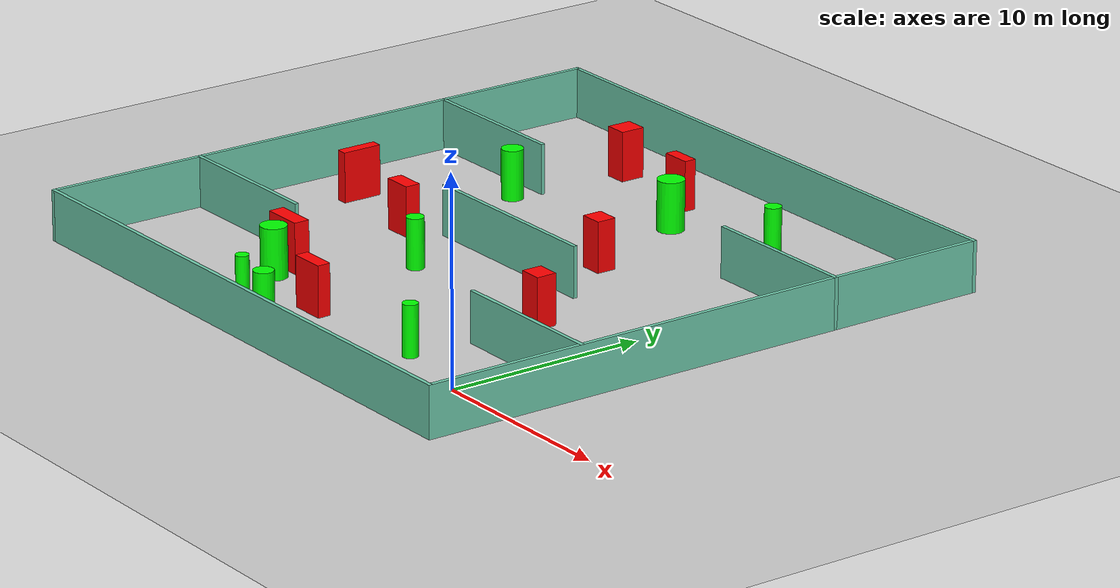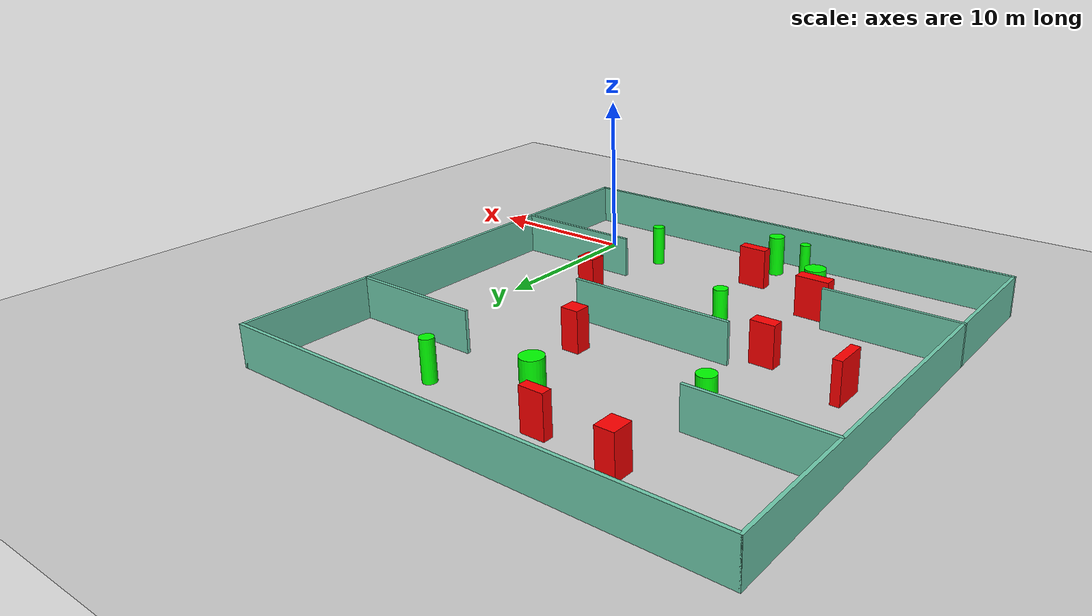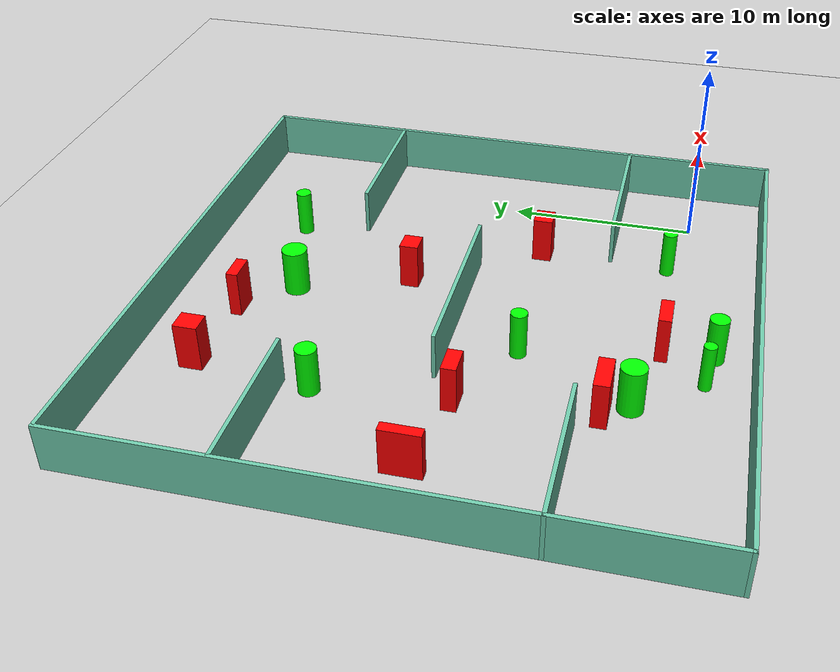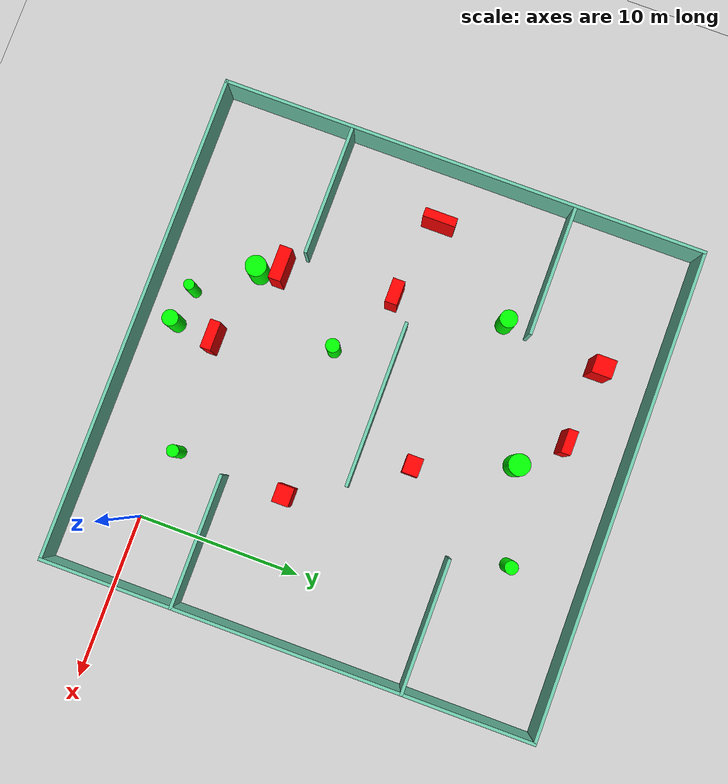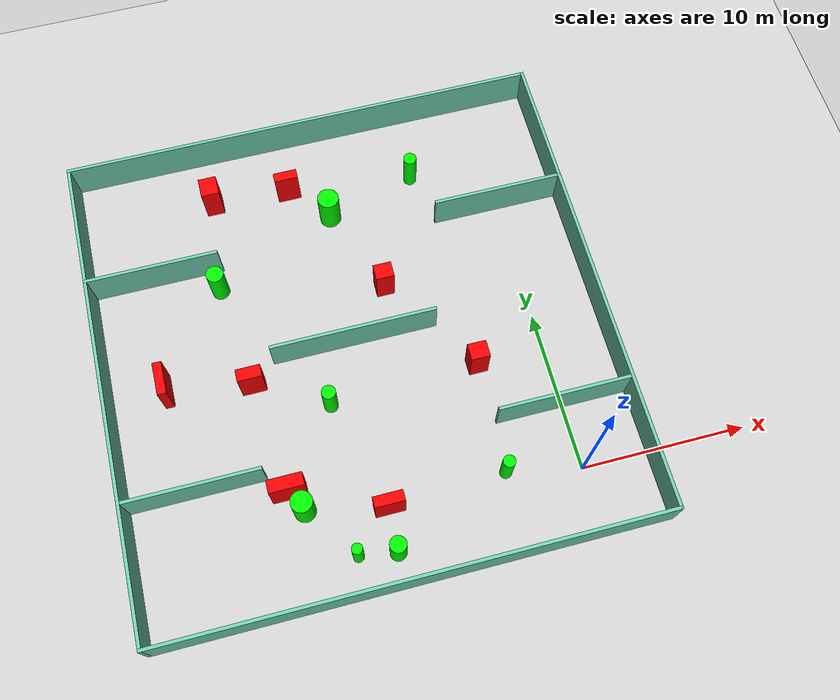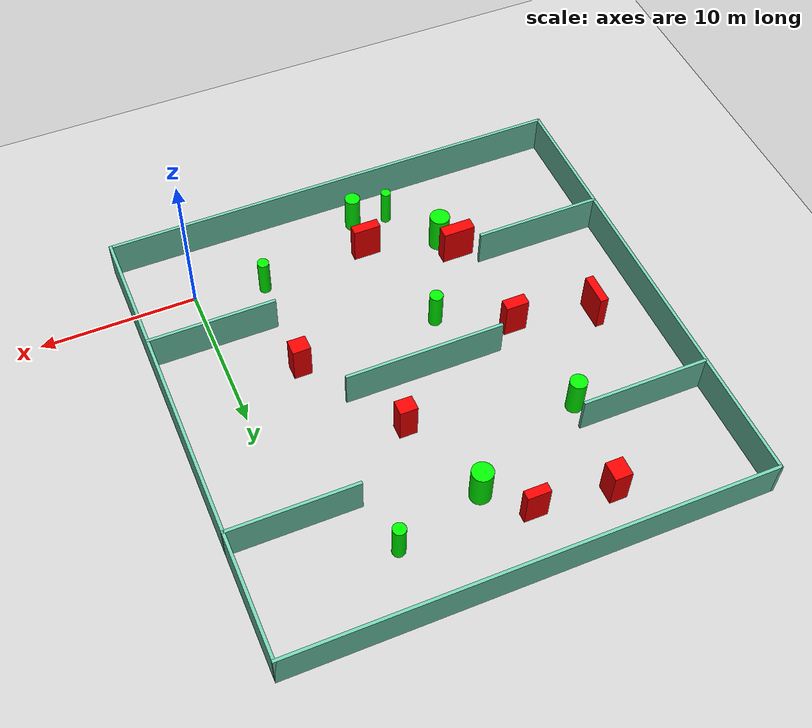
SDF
<sdf version="1.7">
 <world name="default">
  <light name="sun" type="directional">
   <pose>0 0 10 0 -0 0</pose>
   <diffuse>0.8 0.8 0.8 1</diffuse>
   <specular>0.2 0.2 0.2 1</specular>
   <attenuation>
    <range>1000</range>
    <constant>0.9</constant>
    <linear>0.01</linear>
    <quadratic>0.001</quadratic>
   </attenuation>
   <direction>-0.5 0.1 -0.9</direction>
   <spot><inner_angle>0</inner_angle><outer_angle>0</outer_angle><falloff>0</falloff></spot>
  </light>
  <model name="ground_plane">
   <static>1</static>
   <link name="link">
    <collision name="collision">
     <geometry><plane><normal>0 0 1</normal><size>100 100</size></plane></geometry>
     <surface>
      <contact><collide_bitmask>65535</collide_bitmask></contact>
      <friction><ode><mu>100</mu><mu2>50</mu2></ode></friction>
     </surface>
    </collision>
    <visual name="visual">
     <cast_shadows>0</cast_shadows>
     <geometry><plane><normal>0 0 1</normal><size>100 100</size></plane></geometry>
     <material>
      <script><uri>file://media/materials/scripts/gazebo.material</uri><name>Gazebo/Grey</name></script>
     </material>
    </visual>
   </link>
  </model>
  <gravity>0 0 -9.8</gravity>
  <magnetic_field>6e-06 2.3e-05 -4.2e-05</magnetic_field>
  <atmosphere type="adiabatic"/>
  <physics type="ode">
   <max_step_size>0.001</max_step_size>
   <real_time_factor>1</real_time_factor>
   <real_time_update_rate>1000</real_time_update_rate>
  </physics>
  <scene><ambient>0.4 0.4 0.4 1</ambient><background>0.7 0.7 0.7 1</background><shadows>1</shadows></scene>
  <spherical_coordinates>
   <surface_model>EARTH_WGS84</surface_model>
   <latitude_deg>0</latitude_deg>
   <longitude_deg>0</longitude_deg>
   <elevation>0</elevation>
   <heading_deg>0</heading_deg>
  </spherical_coordinates>
  <model name="my_base_walls">
   <link name="Wall_10">
    <collision name="Wall_10_Collision">
     <geometry><box><size>8.2 0.2 2.5</size></box></geometry>
     <pose>0 0 1.25 0 -0 0</pose>
    </collision>
    <visual name="Wall_10_Visual">
     <pose>0 0 1.25 0 -0 0</pose>
     <geometry><box><size>8.2 0.2 2.5</size></box></geometry>
     <material>
      <script><uri>file://media/materials/scripts/gazebo.material</uri><name>Gazebo/Grey</name></script>
      <ambient>0.435294 0.796078 0.67451 1</ambient>
     </material>
     <meta><layer>0</layer></meta>
    </visual>
    <pose>-11 -7 0 0 -0 0</pose>
   </link>
   <link name="Wall_12">
    <collision name="Wall_12_Collision">
     <geometry><box><size>8.2 0.2 2.5</size></box></geometry>
     <pose>0 0 1.25 0 -0 0</pose>
    </collision>
    <visual name="Wall_12_Visual">
     <pose>0 0 1.25 0 -0 0</pose>
     <geometry><box><size>8.2 0.2 2.5</size></box></geometry>
     <material>
      <script><uri>file://media/materials/scripts/gazebo.material</uri><name>Gazebo/Grey</name></script>
      <ambient>0.435294 0.796078 0.67451 1</ambient>
     </material>
     <meta><layer>0</layer></meta>
    </visual>
    <pose>-11 7 0 0 -0 0</pose>
   </link>
   <link name="Wall_14">
    <collision name="Wall_14_Collision">
     <geometry><box><size>8.2 0.2 2.5</size></box></geometry>
     <pose>0 0 1.25 0 -0 0</pose>
    </collision>
    <visual name="Wall_14_Visual">
     <pose>0 0 1.25 0 -0 0</pose>
     <geometry><box><size>8.2 0.2 2.5</size></box></geometry>
     <material>
      <script><uri>file://media/materials/scripts/gazebo.material</uri><name>Gazebo/Grey</name></script>
      <ambient>0.435294 0.796078 0.67451 1</ambient>
     </material>
     <meta><layer>0</layer></meta>
    </visual>
    <pose>11 7 0 0 -0 3.14159</pose>
   </link>
   <link name="Wall_16">
    <collision name="Wall_16_Collision">
     <geometry><box><size>10.2 0.2 2.5</size></box></geometry>
     <pose>0 0 1.25 0 -0 0</pose>
    </collision>
    <visual name="Wall_16_Visual">
     <pose>0 0 1.25 0 -0 0</pose>
     <geometry><box><size>10.2 0.2 2.5</size></box></geometry>
     <material>
      <script><uri>file://media/materials/scripts/gazebo.material</uri><name>Gazebo/Grey</name></script>
      <ambient>0.435294 0.796078 0.67451 1</ambient>
     </material>
     <meta><layer>0</layer></meta>
    </visual>
    <pose>0 0 0 0 -0 3.14159</pose>
   </link>
   <link name="Wall_2">
    <collision name="Wall_2_Collision">
     <geometry><box><size>30.2 0.2 2.5</size></box></geometry>
     <pose>0 0 1.25 0 -0 0</pose>
    </collision>
    <visual name="Wall_2_Visual">
     <pose>0 0 1.25 0 -0 0</pose>
     <geometry><box><size>30.2 0.2 2.5</size></box></geometry>
     <material>
      <script><uri>file://media/materials/scripts/gazebo.material</uri><name>Gazebo/Grey</name></script>
      <ambient>0.435294 0.796078 0.67451 1</ambient>
     </material>
     <meta><layer>0</layer></meta>
    </visual>
    <pose>0 -15 0 0 -0 3.14159</pose>
   </link>
   <link name="Wall_3">
    <collision name="Wall_3_Collision">
     <geometry><box><size>30.2 0.2 2.5</size></box></geometry>
     <pose>0 0 1.25 0 -0 0</pose>
    </collision>
    <visual name="Wall_3_Visual">
     <pose>0 0 1.25 0 -0 0</pose>
     <geometry><box><size>30.2 0.2 2.5</size></box></geometry>
     <material>
      <script><uri>file://media/materials/scripts/gazebo.material</uri><name>Gazebo/Grey</name></script>
      <ambient>0.435294 0.796078 0.67451 1</ambient>
     </material>
     <meta><layer>0</layer></meta>
    </visual>
    <pose>-15 0 0 0 -0 1.5708</pose>
   </link>
   <link name="Wall_4">
    <collision name="Wall_4_Collision">
     <geometry><box><size>30.2 0.2 2.5</size></box></geometry>
     <pose>0 0 1.25 0 -0 0</pose>
    </collision>
    <visual name="Wall_4_Visual">
     <pose>0 0 1.25 0 -0 0</pose>
     <geometry><box><size>30.2 0.2 2.5</size></box></geometry>
     <material>
      <script><uri>file://media/materials/scripts/gazebo.material</uri><name>Gazebo/Grey</name></script>
      <ambient>0.435294 0.796078 0.67451 1</ambient>
     </material>
     <meta><layer>0</layer></meta>
    </visual>
    <pose>0 15 0 0 -0 0</pose>
   </link>
   <link name="Wall_6">
    <collision name="Wall_6_Collision">
     <geometry><box><size>30.2 0.2 2.5</size></box></geometry>
     <pose>0 0 1.25 0 -0 0</pose>
    </collision>
    <visual name="Wall_6_Visual">
     <pose>0 0 1.25 0 -0 0</pose>
     <geometry><box><size>30.2 0.2 2.5</size></box></geometry>
     <material>
      <script><uri>file://media/materials/scripts/gazebo.material</uri><name>Gazebo/Grey</name></script>
      <ambient>0.435294 0.796078 0.67451 1</ambient>
     </material>
     <meta><layer>0</layer></meta>
    </visual>
    <pose>15 0 0 0 -0 1.5708</pose>
   </link>
   <link name="Wall_8">
    <collision name="Wall_8_Collision">
     <geometry><box><size>8.2 0.2 2.5</size></box></geometry>
     <pose>0 0 1.25 0 -0 0</pose>
    </collision>
    <visual name="Wall_8_Visual">
     <pose>0 0 1.25 0 -0 0</pose>
     <geometry><box><size>8.2 0.2 2.5</size></box></geometry>
     <material>
      <script><uri>file://media/materials/scripts/gazebo.material</uri><name>Gazebo/Grey</name></script>
      <ambient>0.435294 0.796078 0.67451 1</ambient>
     </material>
     <meta><layer>0</layer></meta>
    </visual>
    <pose>11 -7 0 0 -0 3.14159</pose>
   </link>
   <static>1</static>
   <pose>-11 11 0 0 -0 0</pose>
  </model>
  <model name="cylinder1">
   <static>1</static>
   <link name="link">
    <inertial>
     <mass>1</mass>
     <inertia><ixx>0.5</ixx><ixy>0</ixy><ixz>0</ixz><iyy>0.5</iyy><iyz>0</iyz><izz>1</izz></inertia>
    </inertial>
    <collision name="collision">
     <geometry><cylinder><radius>0.6436162644452617</radius><length>2.5</length></cylinder></geometry>
    </collision>
    <visual name="visual">
     <geometry><cylinder><radius>0.6436162644452617</radius><length>2.5</length></cylinder></geometry>
     <material>
      <ambient>0 1 0 1</ambient>
      <diffuse>0 1 0 1</diffuse>
      <specular>0.1 0.1 0.1 1</specular>
      <emissive>0 0 0 0</emissive>
     </material>
    </visual>
   </link>
   <pose>-16.178257232659053 1.5680918815757554 1.25 0 0 0</pose>
  </model>
  <model name="cylinder2">
   <static>1</static>
   <link name="link">
    <inertial>
     <mass>1</mass>
     <inertia><ixx>0.5</ixx><ixy>0</ixy><ixz>0</ixz><iyy>0.5</iyy><iyz>0</iyz><izz>1</izz></inertia>
    </inertial>
    <collision name="collision">
     <geometry><cylinder><radius>0.32356340631819147</radius><length>2.5</length></cylinder></geometry>
    </collision>
    <visual name="visual">
     <geometry><cylinder><radius>0.32356340631819147</radius><length>2.5</length></cylinder></geometry>
     <material>
      <ambient>0 1 0 1</ambient>
      <diffuse>0 1 0 1</diffuse>
      <specular>0.1 0.1 0.1 1</specular>
      <emissive>0 0 0 0</emissive>
     </material>
    </visual>
   </link>
   <pose>-13.800971809371603 -1.7138038756237677 1.25 0 0 0</pose>
  </model>
  <model name="cylinder3">
   <static>1</static>
   <link name="link">
    <inertial>
     <mass>1</mass>
     <inertia><ixx>0.5</ixx><ixy>0</ixy><ixz>0</ixz><iyy>0.5</iyy><iyz>0</iyz><izz>1</izz></inertia>
    </inertial>
    <collision name="collision">
     <geometry><cylinder><radius>0.6662349703660211</radius><length>2.5</length></cylinder></geometry>
    </collision>
    <visual name="visual">
     <geometry><cylinder><radius>0.6662349703660211</radius><length>2.5</length></cylinder></geometry>
     <material>
      <ambient>0 1 0 1</ambient>
      <diffuse>0 1 0 1</diffuse>
      <specular>0.1 0.1 0.1 1</specular>
      <emissive>0 0 0 0</emissive>
     </material>
    </visual>
   </link>
   <pose>-10.528072172017696 19.941921175623094 1.25 0 0 0</pose>
  </model>
  <model name="cylinder4">
   <static>1</static>
   <link name="link">
    <inertial>
     <mass>1</mass>
     <inertia><ixx>0.5</ixx><ixy>0</ixy><ixz>0</ixz><iyy>0.5</iyy><iyz>0</iyz><izz>1</izz></inertia>
    </inertial>
    <collision name="collision">
     <geometry><cylinder><radius>0.4926745460629952</radius><length>2.5</length></cylinder></geometry>
    </collision>
    <visual name="visual">
     <geometry><cylinder><radius>0.4926745460629952</radius><length>2.5</length></cylinder></geometry>
     <material>
      <ambient>0 1 0 1</ambient>
      <diffuse>0 1 0 1</diffuse>
      <specular>0.1 0.1 0.1 1</specular>
      <emissive>0 0 0 0</emissive>
     </material>
    </visual>
   </link>
   <pose>-11.583915252080576 -2.041709204816288 1.25 0 0 0</pose>
  </model>
  <model name="cylinder5">
   <static>1</static>
   <link name="link">
    <inertial>
     <mass>1</mass>
     <inertia><ixx>0.5</ixx><ixy>0</ixy><ixz>0</ixz><iyy>0.5</iyy><iyz>0</iyz><izz>1</izz></inertia>
    </inertial>
    <collision name="collision">
     <geometry><cylinder><radius>0.3704262256121721</radius><length>2.5</length></cylinder></geometry>
    </collision>
    <visual name="visual">
     <geometry><cylinder><radius>0.3704262256121721</radius><length>2.5</length></cylinder></geometry>
     <material>
      <ambient>0 1 0 1</ambient>
      <diffuse>0 1 0 1</diffuse>
      <specular>0.1 0.1 0.1 1</specular>
      <emissive>0 0 0 0</emissive>
     </material>
    </visual>
   </link>
   <pose>-4.404126477244725 0.8892690133392009 1.25 0 0 0</pose>
  </model>
  <model name="cylinder6">
   <static>1</static>
   <link name="link">
    <inertial>
     <mass>1</mass>
     <inertia><ixx>0.5</ixx><ixy>0</ixy><ixz>0</ixz><iyy>0.5</iyy><iyz>0</iyz><izz>1</izz></inertia>
    </inertial>
    <collision name="collision">
     <geometry><cylinder><radius>0.40946485522116927</radius><length>2.5</length></cylinder></geometry>
    </collision>
    <visual name="visual">
     <geometry><cylinder><radius>0.40946485522116927</radius><length>2.5</length></cylinder></geometry>
     <material>
      <ambient>0 1 0 1</ambient>
      <diffuse>0 1 0 1</diffuse>
      <specular>0.1 0.1 0.1 1</specular>
      <emissive>0 0 0 0</emissive>
     </material>
    </visual>
   </link>
   <pose>-4.839848242233179 21.475081791777278 1.25 0 0 0</pose>
  </model>
  <model name="cylinder7">
   <static>1</static>
   <link name="link">
    <inertial>
     <mass>1</mass>
     <inertia><ixx>0.5</ixx><ixy>0</ixy><ixz>0</ixz><iyy>0.5</iyy><iyz>0</iyz><izz>1</izz></inertia>
    </inertial>
    <collision name="collision">
     <geometry><cylinder><radius>0.539126237435456</radius><length>2.5</length></cylinder></geometry>
    </collision>
    <visual name="visual">
     <geometry><cylinder><radius>0.539126237435456</radius><length>2.5</length></cylinder></geometry>
     <material>
      <ambient>0 1 0 1</ambient>
      <diffuse>0 1 0 1</diffuse>
      <specular>0.1 0.1 0.1 1</specular>
      <emissive>0 0 0 0</emissive>
     </material>
    </visual>
   </link>
   <pose>-18.331092029695554 16.51684521591767 1.25 0 0 0</pose>
  </model>
  <model name="cylinder8">
   <static>1</static>
   <link name="link">
    <inertial>
     <mass>1</mass>
     <inertia><ixx>0.5</ixx><ixy>0</ixy><ixz>0</ixz><iyy>0.5</iyy><iyz>0</iyz><izz>1</izz></inertia>
    </inertial>
    <collision name="collision">
     <geometry><cylinder><radius>0.4269231334336239</radius><length>2.5</length></cylinder></geometry>
    </collision>
    <visual name="visual">
     <geometry><cylinder><radius>0.4269231334336239</radius><length>2.5</length></cylinder></geometry>
     <material>
      <ambient>0 1 0 1</ambient>
      <diffuse>0 1 0 1</diffuse>
      <specular>0.1 0.1 0.1 1</specular>
      <emissive>0 0 0 0</emissive>
     </material>
    </visual>
   </link>
   <pose>-13.323873672379207 7.4192153474604545 1.25 0 0 0</pose>
  </model>
  <model name="box1">
   <static>1</static>
   <link name="link">
    <inertial>
     <mass>1</mass>
     <inertia><ixx>0.083</ixx><ixy>0</ixy><ixz>0</ixz><iyy>0.083</iyy><iyz>0</iyz><izz>0.083</izz></inertia>
    </inertial>
    <collision name="collision">
     <geometry><box><size>1.4795995446542825 0.7514361500948414 2.5</size></box></geometry>
    </collision>
    <visual name="visual">
     <geometry><box><size>1.4795995446542825 0.7514361500948414 2.5</size></box></geometry>
     <material>
      <ambient>1 0 0 1</ambient>
      <diffuse>1 0 0 1</diffuse>
      <specular>0.1 0.1 0.1 1</specular>
      <emissive>0 0 0 0</emissive>
     </material>
    </visual>
    <sensor name="my_contact" type="contact">
     <contact><collision>box_collision</collision><topic>__default_topic__</topic></contact>
    </sensor>
   </link>
   <pose>-17.55968725824645 9.736384037033416 1.25 0 0 0</pose>
  </model>
  <model name="box2">
   <static>1</static>
   <link name="link">
    <inertial>
     <mass>1</mass>
     <inertia><ixx>0.083</ixx><ixy>0</ixy><ixz>0</ixz><iyy>0.083</iyy><iyz>0</iyz><izz>0.083</izz></inertia>
    </inertial>
    <collision name="collision">
     <geometry><box><size>1.123075998887359 0.9694061175613266 2.5</size></box></geometry>
    </collision>
    <visual name="visual">
     <geometry><box><size>1.123075998887359 0.9694061175613266 2.5</size></box></geometry>
     <material>
      <ambient>1 0 0 1</ambient>
      <diffuse>1 0 0 1</diffuse>
      <specular>0.1 0.1 0.1 1</specular>
      <emissive>0 0 0 0</emissive>
     </material>
    </visual>
    <sensor name="my_contact" type="contact">
     <contact><collision>box_collision</collision><topic>__default_topic__</topic></contact>
    </sensor>
   </link>
   <pose>-8.376896654635644 14.189493275313357 1.25 0 0 0</pose>
  </model>
  <model name="box3">
   <static>1</static>
   <link name="link">
    <inertial>
     <mass>1</mass>
     <inertia><ixx>0.083</ixx><ixy>0</ixy><ixz>0</ixz><iyy>0.083</iyy><iyz>0</iyz><izz>0.083</izz></inertia>
    </inertial>
    <collision name="collision">
     <geometry><box><size>1.769379221860558 0.6471387561439279 2.5</size></box></geometry>
    </collision>
    <visual name="visual">
     <geometry><box><size>1.769379221860558 0.6471387561439279 2.5</size></box></geometry>
     <material>
      <ambient>1 0 0 1</ambient>
      <diffuse>1 0 0 1</diffuse>
      <specular>0.1 0.1 0.1 1</specular>
      <emissive>0 0 0 0</emissive>
     </material>
    </visual>
    <sensor name="my_contact" type="contact">
     <contact><collision>box_collision</collision><topic>__default_topic__</topic></contact>
    </sensor>
   </link>
   <pose>-11.464662211734218 0.5157909766361 1.25 0 0 0</pose>
  </model>
  <model name="box4">
   <static>1</static>
   <link name="link">
    <inertial>
     <mass>1</mass>
     <inertia><ixx>0.083</ixx><ixy>0</ixy><ixz>0</ixz><iyy>0.083</iyy><iyz>0</iyz><izz>0.083</izz></inertia>
    </inertial>
    <collision name="collision">
     <geometry><box><size>1.1142076084935932 1.234106482586582 2.5</size></box></geometry>
    </collision>
    <visual name="visual">
     <geometry><box><size>1.1142076084935932 1.234106482586582 2.5</size></box></geometry>
     <material>
      <ambient>1 0 0 1</ambient>
      <diffuse>1 0 0 1</diffuse>
      <specular>0.1 0.1 0.1 1</specular>
      <emissive>0 0 0 0</emissive>
     </material>
    </visual>
    <sensor name="my_contact" type="contact">
     <contact><collision>box_collision</collision><topic>__default_topic__</topic></contact>
    </sensor>
   </link>
   <pose>-17.617870197883633 22.663962021840636 1.25 0 0 0</pose>
  </model>
  <model name="box5">
   <static>1</static>
   <link name="link">
    <inertial>
     <mass>1</mass>
     <inertia><ixx>0.083</ixx><ixy>0</ixy><ixz>0</ixz><iyy>0.083</iyy><iyz>0</iyz><izz>0.083</izz></inertia>
    </inertial>
    <collision name="collision">
     <geometry><box><size>1.1426755605446135 1.0167630088261637 2.5</size></box></geometry>
    </collision>
    <visual name="visual">
     <geometry><box><size>1.1426755605446135 1.0167630088261637 2.5</size></box></geometry>
     <material>
      <ambient>1 0 0 1</ambient>
      <diffuse>1 0 0 1</diffuse>
      <specular>0.1 0.1 0.1 1</specular>
      <emissive>0 0 0 0</emissive>
     </material>
    </visual>
    <sensor name="my_contact" type="contact">
     <contact><collision>box_collision</collision><topic>__default_topic__</topic></contact>
    </sensor>
   </link>
   <pose>-4.217999707493981 7.750695019492516 1.25 0 0 0</pose>
  </model>
  <model name="box6">
   <static>1</static>
   <link name="link">
    <inertial>
     <mass>1</mass>
     <inertia><ixx>0.083</ixx><ixy>0</ixy><ixz>0</ixz><iyy>0.083</iyy><iyz>0</iyz><izz>0.083</izz></inertia>
    </inertial>
    <collision name="collision">
     <geometry><box><size>2.0697266643536114 0.7820574376838589 2.5</size></box></geometry>
    </collision>
    <visual name="visual">
     <geometry><box><size>2.0697266643536114 0.7820574376838589 2.5</size></box></geometry>
     <material>
      <ambient>1 0 0 1</ambient>
      <diffuse>1 0 0 1</diffuse>
      <specular>0.1 0.1 0.1 1</specular>
      <emissive>0 0 0 0</emissive>
     </material>
    </visual>
    <sensor name="my_contact" type="contact">
     <contact><collision>box_collision</collision><topic>__default_topic__</topic></contact>
    </sensor>
   </link>
   <pose>-16.82154972155801 2.843729744363044 1.25 0 0 0</pose>
  </model>
  <model name="box7">
   <static>1</static>
   <link name="link">
    <inertial>
     <mass>1</mass>
     <inertia><ixx>0.083</ixx><ixy>0</ixy><ixz>0</ixz><iyy>0.083</iyy><iyz>0</iyz><izz>0.083</izz></inertia>
    </inertial>
    <collision name="collision">
     <geometry><box><size>1.468527582503088 0.6014358350240337 2.5</size></box></geometry>
    </collision>
    <visual name="visual">
     <geometry><box><size>1.468527582503088 0.6014358350240337 2.5</size></box></geometry>
     <material>
      <ambient>1 0 0 1</ambient>
      <diffuse>1 0 0 1</diffuse>
      <specular>0.1 0.1 0.1 1</specular>
      <emissive>0 0 0 0</emissive>
     </material>
    </visual>
    <sensor name="my_contact" type="contact">
     <contact><collision>box_collision</collision><topic>__default_topic__</topic></contact>
    </sensor>
   </link>
   <pose>-12.777181599800313 22.227110778980848 1.25 0 0 0</pose>
  </model>
  <model name="box8">
   <static>1</static>
   <link name="link">
    <inertial>
     <mass>1</mass>
     <inertia><ixx>0.083</ixx><ixy>0</ixy><ixz>0</ixz><iyy>0.083</iyy><iyz>0</iyz><izz>0.083</izz></inertia>
    </inertial>
    <collision name="collision">
     <geometry><box><size>0.5398603360498017 2.0119538275601454 2.5</size></box></geometry>
    </collision>
    <visual name="visual">
     <geometry><box><size>0.5398603360498017 2.0119538275601454 2.5</size></box></geometry>
     <material>
      <ambient>1 0 0 1</ambient>
      <diffuse>1 0 0 1</diffuse>
      <specular>0.1 0.1 0.1 1</specular>
      <emissive>0 0 0 0</emissive>
     </material>
    </visual>
    <sensor name="my_contact" type="contact">
     <contact><collision>box_collision</collision><topic>__default_topic__</topic></contact>
    </sensor>
   </link>
   <pose>-22.632367615576076 10.720335081168656 1.25 0 0 0</pose>
  </model>
 </world>
</sdf>
